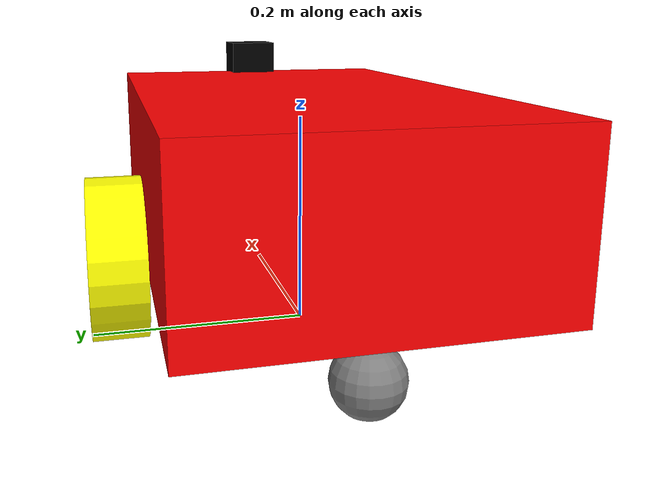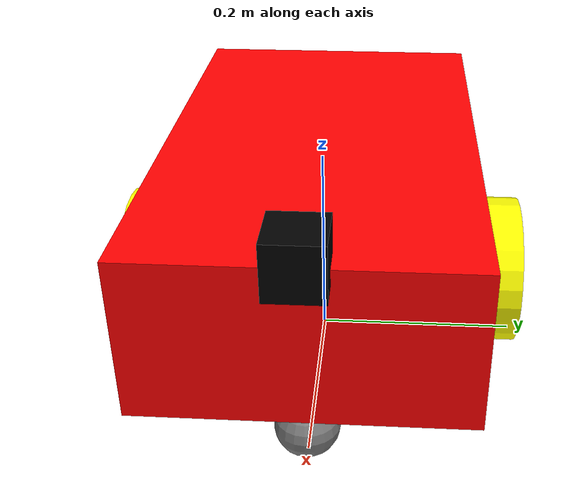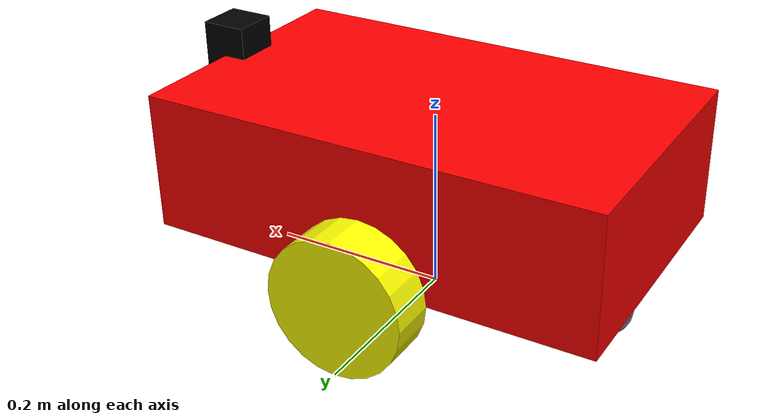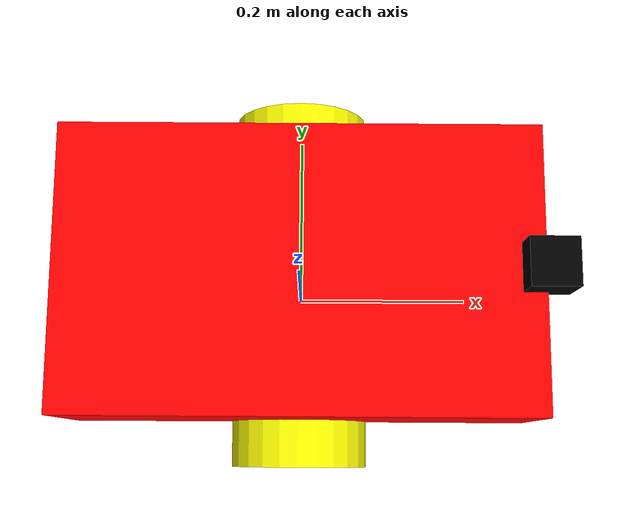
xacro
<?xml version="1.0" ?>
<robot name="follower_robot" xmlns:xacro="http://www.ros.org/wiki/xacro">
    <xacro:property name="body_length" value="0.5" />
    <xacro:property name="body_width" value="0.3" />
    <xacro:property name="body_height" value="0.15" />
    <xacro:property name="wheel_radius" value="0.075" />
    <xacro:property name="wheel_length" value="0.05" />
    <xacro:property name="caster_radius" value="0.03" />

    <link name="base_footprint"/>

    <link name="base_link">
        <visual>
            <origin rpy="0 0 0" xyz="0 0 ${body_height/2}"/>
            <geometry>
                <box size="${body_length} ${body_width} ${body_height}"/>
            </geometry>
            <material name="red">
                <color rgba="1 0 0 1"/>
            </material>
        </visual>
        <collision>
            <origin rpy="0 0 0" xyz="0 0 ${body_height/2}"/>
            <geometry>
                <box size="${body_length} ${body_width} ${body_height}"/>
            </geometry>
        </collision>
        <inertial>
            <origin xyz="0 0 ${body_height/2}" rpy="0 0 0"/>
            <mass value="3.0"/>
            <inertia ixx="0.01" ixy="0.0" ixz="0.0" iyy="0.01" iyz="0.0" izz="0.01"/>
        </inertial>
    </link>

    <joint name="base_joint" type="fixed">
        <parent link="base_footprint"/>
        <child link="base_link"/>
        <origin xyz="0 0 ${wheel_radius}" rpy="0 0 0"/>
    </joint>

    <xacro:macro name="wheel_link" params="prefix">
        <link name="${prefix}_wheel_link">
            <visual>
                <origin rpy="1.570795 0 0" xyz="0 0 0"/>
                <geometry>
                    <cylinder length="${wheel_length}" radius="${wheel_radius}"/>
                </geometry>
                <material name="yellow">
                    <color rgba="1 1 0 1"/>
                </material>
            </visual>
            <collision>
                <origin rpy="1.570795 0 0" xyz="0 0 0"/>
                <geometry>
                    <cylinder length="${wheel_length}" radius="${wheel_radius}"/>
                </geometry>
            </collision>
            <inertial>
                <mass value="0.2"/>
                <inertia ixx="0.001" ixy="0.0" ixz="0.0" iyy="0.001" iyz="0.0" izz="0.001"/>
            </inertial>
        </link>
    </xacro:macro>

    <xacro:wheel_link prefix="left"/>
    <xacro:wheel_link prefix="right"/>

    <joint name="left_wheel_joint" type="continuous">
        <parent link="base_link"/>
        <child link="left_wheel_link" />
        <origin xyz="0 ${body_width/2 + wheel_length/2} 0" rpy="0 0 0"/>
        <axis xyz="0 1 0" />
    </joint>

    <joint name="right_wheel_joint" type="continuous">
        <parent link="base_link"/>
        <child link="right_wheel_link" />
        <origin xyz="0 -${body_width/2 + wheel_length/2} 0" rpy="0 0 0"/>
        <axis xyz="0 1 0" />
    </joint>

    <link name="front_caster_link">
        <visual>
            <geometry>
                <sphere radius="${caster_radius}"/>
            </geometry>
            <material name="grey">
                <color rgba="0.5 0.5 0.5 1"/>
            </material>
        </visual>
        <collision>
            <geometry>
                <sphere radius="${caster_radius}"/>
            </geometry>
        </collision>
        <inertial>
            <mass value="0.1"/>
            <inertia ixx="0.0001" ixy="0.0" ixz="0.0" iyy="0.0001" iyz="0.0" izz="0.0001"/>
        </inertial>
    </link>

    <joint name="front_caster_joint" type="fixed">
        <parent link="base_link"/>
        <child link="front_caster_link"/>
        <origin xyz="${body_length/2 * 0.8} 0 -${body_height/2 - caster_radius}"/>
    </joint>

    <link name="rear_caster_link">
        <visual>
            <geometry>
                <sphere radius="${caster_radius}"/>
            </geometry>
            <material name="grey">
                <color rgba="0.5 0.5 0.5 1"/>
            </material>
        </visual>
        <collision>
            <geometry>
                <sphere radius="${caster_radius}"/>
            </geometry>
        </collision>
        <inertial>
            <mass value="0.1"/>
            <inertia ixx="0.0001" ixy="0.0" ixz="0.0" iyy="0.0001" iyz="0.0" izz="0.0001"/>
        </inertial>
    </link>

    <joint name="rear_caster_joint" type="fixed">
        <parent link="base_link"/>
        <child link="rear_caster_link"/>
        <origin xyz="-${body_length/2 * 0.8} 0 -${body_height/2 - caster_radius}"/>
    </joint>

    <link name="laser_link">
        <visual>
            <origin rpy="0 0 0" xyz="0 0 0"/>
            <geometry>
                <box size="0.05 0.05 0.05"/>
            </geometry>
            <material name="black">
                <color rgba="0 0 0 1"/>
            </material>
        </visual>
        <collision>
            <origin rpy="0 0 0" xyz="0 0 0"/>
            <geometry>
                <box size="0.05 0.05 0.05"/>
            </geometry>
        </collision>
        <inertial>
            <mass value="0.05"/>
            <inertia ixx="1e-4" ixy="0.0" ixz="0.0" iyy="1e-4" iyz="0.0" izz="1e-4"/>
        </inertial>
    </link>

    <joint name="laser_joint" type="fixed">
        <parent link="base_link"/>
        <child link="laser_link"/>
        <origin xyz="${body_length/2} 0 ${body_height/2 +  0.06 + 0.025}" rpy="0 0 0"/>
    </joint>

    <gazebo reference="base_link">
        <material>Gazebo/Red</material>
        <self_collide>true</self_collide>
    </gazebo>

    <gazebo reference="left_wheel_link">
        <material>Gazebo/Yellow</material>
        <mu1>1.0</mu1>
        <mu2>1.0</mu2>
        <maxVel>1.0</maxVel>
        <minDepth>0.001</minDepth>
    </gazebo>

    <gazebo reference="right_wheel_link">
        <material>Gazebo/Yellow</material>
        <mu1>1.0</mu1>
        <mu2>1.0</mu2>
        <maxVel>1.0</maxVel>
        <minDepth>0.001</minDepth>
    </gazebo>

    <gazebo reference="front_caster_link">
        <material>Gazebo/Grey</material>
        <mu1>0.0</mu1>
        <mu2>0.0</mu2>
        <maxVel>1.0</maxVel>
        <minDepth>0.001</minDepth>
    </gazebo>

    <gazebo reference="rear_caster_link">
        <material>Gazebo/Grey</material>
        <mu1>0.0</mu1>
        <mu2>0.0</mu2>
        <maxVel>1.0</maxVel>
        <minDepth>0.001</minDepth>
    </gazebo>

    <gazebo>
        <plugin name="follower_diff_drive" filename="libgazebo_ros_diff_drive.so">
            <update_rate>50</update_rate>
            <left_joint>left_wheel_joint</left_joint>
            <right_joint>right_wheel_joint</right_joint>
            <wheel_separation>${(body_width/2 + wheel_length/2) * 2}</wheel_separation>
            <wheel_diameter>${wheel_radius*2}</wheel_diameter>
            <max_wheel_torque>20</max_wheel_torque>
            <max_wheel_acceleration>1.0</max_wheel_acceleration>
            <ros>
                <namespace>/follower</namespace>
                <remapping>cmd_vel:=cmd_vel</remapping>
                <remapping>odom:=odom</remapping>
            </ros>
            <odometry_frame>follower/odom</odometry_frame>
            <robot_base_frame>follower/base_footprint</robot_base_frame>
            <publish_odom>true</publish_odom>
            <publish_odom_tf>true</publish_odom_tf>
            <publish_wheel_tf>false</publish_wheel_tf>
        </plugin>
    </gazebo>

    <gazebo>
        <plugin name="follower_joint_state_publisher"
                filename="libgazebo_ros_joint_state_publisher.so">
            <ros>
                <namespace>/follower</namespace>
                <remapping>~/out:=joint_states</remapping>
            </ros>
            <update_rate>50</update_rate>
            <joint_name>left_wheel_joint</joint_name>
            <joint_name>right_wheel_joint</joint_name>
        </plugin>
    </gazebo>

    <gazebo>
        <plugin name="follower_imu_plugin" filename="libgazebo_ros_imu.so">
            <alwaysOn>true</alwaysOn>
            <updateRate>100.0</updateRate>
            <bodyName>base_link</bodyName>
            <topicName>imu/data</topicName>
            <gaussianNoise>0.005</gaussianNoise>
            <xyzOffset>0 0 0</xyzOffset>
            <rpyOffset>0 0 0</rpyOffset>
        </plugin>
    </gazebo>

    <gazebo reference="laser_link">
        <sensor type="ray" name="laser_sensor">
            <pose>0 0 0 0 0 0</pose>
            <visualize>false</visualize>
            <update_rate>5</update_rate>
            <always_on>1</always_on>
            <ray>
                <scan>
                    <horizontal>
                        <samples>180</samples>
                        <resolution>1</resolution>
                        <min_angle>-3.14159</min_angle>
                        <max_angle>3.14159</max_angle>
                    </horizontal>
                </scan>
                <range>
                    <min>0.05</min>
                    <max>8.0</max>
                    <resolution>0.01</resolution>
                </range>
                <noise>
                    <type>gaussian</type>
                    <mean>0.0</mean>
                    <stddev>0.01</stddev>
                </noise>
            </ray>
            <plugin name="follower_lidar_plugin" filename="libgazebo_ros_ray_sensor.so">
                <ros>
                    <namespace>/follower</namespace>
                    <remapping>~/out:=scan</remapping>
                </ros>
                <output_type>sensor_msgs/LaserScan</output_type>
                <frame_name>laser_link</frame_name>
            </plugin>
        </sensor>
    </gazebo>
</robot>
